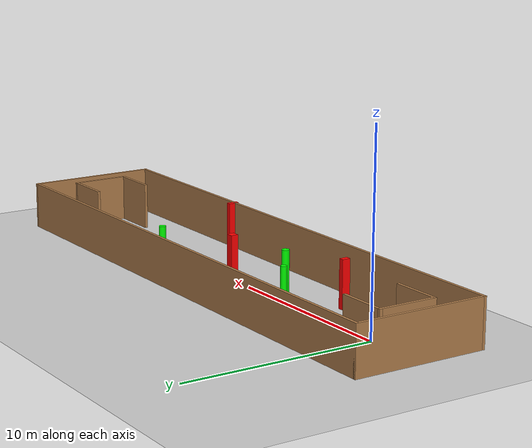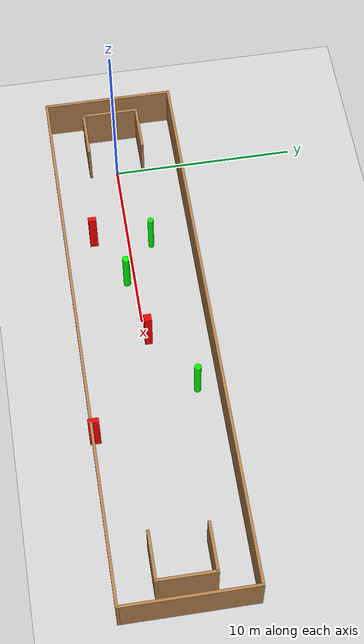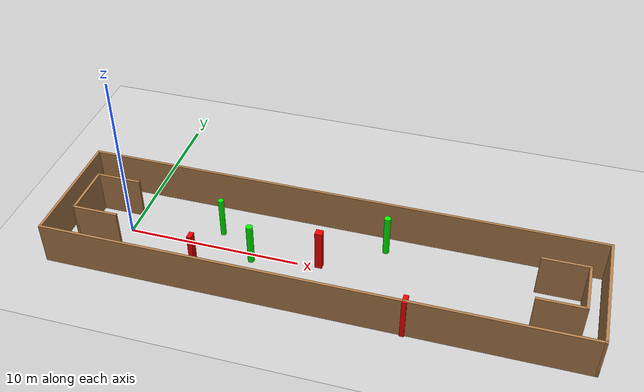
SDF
<sdf version="1.7">
 <world name="default">
  <light name="sun" type="directional">
   <pose>0 0 10 0 -0 0</pose>
   <diffuse>0.8 0.8 0.8 1</diffuse>
   <specular>0.2 0.2 0.2 1</specular>
   <attenuation>
    <range>1000</range>
    <constant>0.9</constant>
    <linear>0.01</linear>
    <quadratic>0.001</quadratic>
   </attenuation>
   <direction>-0.5 0.1 -0.9</direction>
   <spot><inner_angle>0</inner_angle><outer_angle>0</outer_angle><falloff>0</falloff></spot>
  </light>
  <model name="ground_plane">
   <static>1</static>
   <link name="link">
    <collision name="collision">
     <geometry><plane><normal>0 0 1</normal><size>100 100</size></plane></geometry>
     <surface>
      <contact><collide_bitmask>65535</collide_bitmask></contact>
      <friction><ode><mu>100</mu><mu2>50</mu2></ode></friction>
     </surface>
    </collision>
    <visual name="visual">
     <cast_shadows>0</cast_shadows>
     <geometry><plane><normal>0 0 1</normal><size>100 100</size></plane></geometry>
     <material>
      <script><uri>file://media/materials/scripts/gazebo.material</uri><name>Gazebo/Grey</name></script>
     </material>
    </visual>
   </link>
  </model>
  <gravity>0 0 -9.8</gravity>
  <magnetic_field>6e-06 2.3e-05 -4.2e-05</magnetic_field>
  <atmosphere type="adiabatic"/>
  <physics type="ode">
   <max_step_size>0.001</max_step_size>
   <real_time_factor>1</real_time_factor>
   <real_time_update_rate>1000</real_time_update_rate>
  </physics>
  <scene><ambient>0.4 0.4 0.4 1</ambient><background>0.7 0.7 0.7 1</background><shadows>1</shadows></scene>
  <spherical_coordinates>
   <surface_model>EARTH_WGS84</surface_model>
   <latitude_deg>0</latitude_deg>
   <longitude_deg>0</longitude_deg>
   <elevation>0</elevation>
   <heading_deg>0</heading_deg>
  </spherical_coordinates>
  <model name="my_base_walls">
   <link name="Wall_0">
    <collision name="Wall_0_Collision">
     <geometry><box><size>7.15 0.15 2.5</size></box></geometry>
     <pose>0 0 1.25 0 -0 0</pose>
    </collision>
    <visual name="Wall_0_Visual">
     <pose>0 0 1.25 0 -0 0</pose>
     <geometry><box><size>7.15 0.15 2.5</size></box></geometry>
     <material>
      <script><uri>file://media/materials/scripts/gazebo.material</uri><name>Gazebo/Wood</name></script>
      <ambient>1 1 1 1</ambient>
     </material>
     <meta><layer>0</layer></meta>
    </visual>
    <pose>-15 0 0 0 -0 1.5708</pose>
   </link>
   <link name="Wall_10">
    <collision name="Wall_10_Collision">
     <geometry><box><size>2.65 0.15 2.5</size></box></geometry>
     <pose>0 0 1.25 0 -0 0</pose>
    </collision>
    <visual name="Wall_10_Visual">
     <pose>0 0 1.25 0 -0 0</pose>
     <geometry><box><size>2.65 0.15 2.5</size></box></geometry>
     <material>
      <script><uri>file://media/materials/scripts/gazebo.material</uri><name>Gazebo/Wood</name></script>
      <ambient>1 1 1 1</ambient>
     </material>
     <meta><layer>0</layer></meta>
    </visual>
    <pose>-12.75 -1.5 0 0 -0 0</pose>
   </link>
   <link name="Wall_12">
    <collision name="Wall_12_Collision">
     <geometry><box><size>2.65 0.15 2.5</size></box></geometry>
     <pose>0 0 1.25 0 -0 0</pose>
    </collision>
    <visual name="Wall_12_Visual">
     <pose>0 0 1.25 0 -0 0</pose>
     <geometry><box><size>2.65 0.15 2.5</size></box></geometry>
     <material>
      <script><uri>file://media/materials/scripts/gazebo.material</uri><name>Gazebo/Wood</name></script>
      <ambient>1 1 1 1</ambient>
     </material>
     <meta><layer>0</layer></meta>
    </visual>
    <pose>-12.75 1.5 0 0 -0 0</pose>
   </link>
   <link name="Wall_14">
    <collision name="Wall_14_Collision">
     <geometry><box><size>3.15 0.15 2.5</size></box></geometry>
     <pose>0 0 1.25 0 -0 0</pose>
    </collision>
    <visual name="Wall_14_Visual">
     <pose>0 0 1.25 0 -0 0</pose>
     <geometry><box><size>3.15 0.15 2.5</size></box></geometry>
     <material>
      <script><uri>file://media/materials/scripts/gazebo.material</uri><name>Gazebo/Wood</name></script>
      <ambient>1 1 1 1</ambient>
     </material>
     <meta><layer>0</layer></meta>
    </visual>
    <pose>14 0 0 0 -0 -1.5708</pose>
   </link>
   <link name="Wall_15">
    <collision name="Wall_15_Collision">
     <geometry><box><size>2.65 0.15 2.5</size></box></geometry>
     <pose>0 0 1.25 0 -0 0</pose>
    </collision>
    <visual name="Wall_15_Visual">
     <pose>0 0 1.25 0 -0 0</pose>
     <geometry><box><size>2.65 0.15 2.5</size></box></geometry>
     <material>
      <script><uri>file://media/materials/scripts/gazebo.material</uri><name>Gazebo/Wood</name></script>
      <ambient>1 1 1 1</ambient>
     </material>
     <meta><layer>0</layer></meta>
    </visual>
    <pose>12.75 -1.5 0 0 -0 3.14159</pose>
   </link>
   <link name="Wall_17">
    <collision name="Wall_17_Collision">
     <geometry><box><size>2.65 0.15 2.5</size></box></geometry>
     <pose>0 0 1.25 0 -0 0</pose>
    </collision>
    <visual name="Wall_17_Visual">
     <pose>0 0 1.25 0 -0 0</pose>
     <geometry><box><size>2.65 0.15 2.5</size></box></geometry>
     <material>
      <script><uri>file://media/materials/scripts/gazebo.material</uri><name>Gazebo/Wood</name></script>
      <ambient>1 1 1 1</ambient>
     </material>
     <meta><layer>0</layer></meta>
    </visual>
    <pose>12.75 1.5 0 0 -0 3.14159</pose>
   </link>
   <link name="Wall_2">
    <collision name="Wall_2_Collision">
     <geometry><box><size>30.15 0.15 2.5</size></box></geometry>
     <pose>0 0 1.25 0 -0 0</pose>
    </collision>
    <visual name="Wall_2_Visual">
     <pose>0 0 1.25 0 -0 0</pose>
     <geometry><box><size>30.15 0.15 2.5</size></box></geometry>
     <material>
      <script><uri>file://media/materials/scripts/gazebo.material</uri><name>Gazebo/Wood</name></script>
      <ambient>1 1 1 1</ambient>
     </material>
     <meta><layer>0</layer></meta>
    </visual>
    <pose>-0 -3.5 0 0 -0 0</pose>
   </link>
   <link name="Wall_4">
    <collision name="Wall_4_Collision">
     <geometry><box><size>30.15 0.15 2.5</size></box></geometry>
     <pose>0 0 1.25 0 -0 0</pose>
    </collision>
    <visual name="Wall_4_Visual">
     <pose>0 0 1.25 0 -0 0</pose>
     <geometry><box><size>30.15 0.15 2.5</size></box></geometry>
     <material>
      <script><uri>file://media/materials/scripts/gazebo.material</uri><name>Gazebo/Wood</name></script>
      <ambient>1 1 1 1</ambient>
     </material>
     <meta><layer>0</layer></meta>
    </visual>
    <pose>-0 3.5 0 0 -0 0</pose>
   </link>
   <link name="Wall_6">
    <collision name="Wall_6_Collision">
     <geometry><box><size>7.15 0.15 2.5</size></box></geometry>
     <pose>0 0 1.25 0 -0 0</pose>
    </collision>
    <visual name="Wall_6_Visual">
     <pose>0 0 1.25 0 -0 0</pose>
     <geometry><box><size>7.15 0.15 2.5</size></box></geometry>
     <material>
      <script><uri>file://media/materials/scripts/gazebo.material</uri><name>Gazebo/Wood</name></script>
      <ambient>1 1 1 1</ambient>
     </material>
     <meta><layer>0</layer></meta>
    </visual>
    <pose>15 0 0 0 -0 -1.5708</pose>
   </link>
   <link name="Wall_9">
    <collision name="Wall_9_Collision">
     <geometry><box><size>3.15 0.15 2.5</size></box></geometry>
     <pose>0 0 1.25 0 -0 0</pose>
    </collision>
    <visual name="Wall_9_Visual">
     <pose>0 0 1.25 0 -0 0</pose>
     <geometry><box><size>3.15 0.15 2.5</size></box></geometry>
     <material>
      <script><uri>file://media/materials/scripts/gazebo.material</uri><name>Gazebo/Wood</name></script>
      <ambient>1 1 1 1</ambient>
     </material>
     <meta><layer>0</layer></meta>
    </visual>
    <pose>-14 0 0 0 -0 -1.5708</pose>
   </link>
   <static>1</static>
   <pose>11.5 0 0 0 -0 0</pose>
  </model>
  <model name="cylinder1">
   <static>1</static>
   <link name="link">
    <inertial>
     <mass>1</mass>
     <inertia><ixx>0.5</ixx><ixy>0</ixy><ixz>0</ixz><iyy>0.5</iyy><iyz>0</iyz><izz>1</izz></inertia>
    </inertial>
    <collision name="collision">
     <geometry><cylinder><radius>0.1955430757274091</radius><length>2.5</length></cylinder></geometry>
    </collision>
    <visual name="visual">
     <geometry><cylinder><radius>0.1955430757274091</radius><length>2.5</length></cylinder></geometry>
     <material>
      <ambient>0 1 0 1</ambient>
      <diffuse>0 1 0 1</diffuse>
      <specular>0.1 0.1 0.1 1</specular>
      <emissive>0 0 0 0</emissive>
     </material>
    </visual>
   </link>
   <pose>7.453279040193957 -0.43951226768660323 1.25 0 0 0</pose>
  </model>
  <model name="cylinder2">
   <static>1</static>
   <link name="link">
    <inertial>
     <mass>1</mass>
     <inertia><ixx>0.5</ixx><ixy>0</ixy><ixz>0</ixz><iyy>0.5</iyy><iyz>0</iyz><izz>1</izz></inertia>
    </inertial>
    <collision name="collision">
     <geometry><cylinder><radius>0.18513770098683238</radius><length>2.5</length></cylinder></geometry>
    </collision>
    <visual name="visual">
     <geometry><cylinder><radius>0.18513770098683238</radius><length>2.5</length></cylinder></geometry>
     <material>
      <ambient>0 1 0 1</ambient>
      <diffuse>0 1 0 1</diffuse>
      <specular>0.1 0.1 0.1 1</specular>
      <emissive>0 0 0 0</emissive>
     </material>
    </visual>
   </link>
   <pose>14.53564680223698 2.316910366325043 1.25 0 0 0</pose>
  </model>
  <model name="cylinder3">
   <static>1</static>
   <link name="link">
    <inertial>
     <mass>1</mass>
     <inertia><ixx>0.5</ixx><ixy>0</ixy><ixz>0</ixz><iyy>0.5</iyy><iyz>0</iyz><izz>1</izz></inertia>
    </inertial>
    <collision name="collision">
     <geometry><cylinder><radius>0.16085053837727067</radius><length>2.5</length></cylinder></geometry>
    </collision>
    <visual name="visual">
     <geometry><cylinder><radius>0.16085053837727067</radius><length>2.5</length></cylinder></geometry>
     <material>
      <ambient>0 1 0 1</ambient>
      <diffuse>0 1 0 1</diffuse>
      <specular>0.1 0.1 0.1 1</specular>
      <emissive>0 0 0 0</emissive>
     </material>
    </visual>
   </link>
   <pose>5.175172966884718 1.2269686791547993 1.25 0 0 0</pose>
  </model>
  <model name="box1">
   <static>1</static>
   <link name="link">
    <inertial>
     <mass>1</mass>
     <inertia><ixx>0.083</ixx><ixy>0</ixy><ixz>0</ixz><iyy>0.083</iyy><iyz>0</iyz><izz>0.083</izz></inertia>
    </inertial>
    <collision name="collision">
     <geometry><box><size>0.41415367753467014 0.3984759793868684 2.5</size></box></geometry>
    </collision>
    <visual name="visual">
     <geometry><box><size>0.41415367753467014 0.3984759793868684 2.5</size></box></geometry>
     <material>
      <ambient>1 0 0 1</ambient>
      <diffuse>1 0 0 1</diffuse>
      <specular>0.1 0.1 0.1 1</specular>
      <emissive>0 0 0 0</emissive>
     </material>
    </visual>
    <sensor name="my_contact" type="contact">
     <contact><collision>box_collision</collision><topic>__default_topic__</topic></contact>
    </sensor>
   </link>
   <pose>11.22888643649083 0.18867080792148894 1.25 0 0 0</pose>
  </model>
  <model name="box2">
   <static>1</static>
   <link name="link">
    <inertial>
     <mass>1</mass>
     <inertia><ixx>0.083</ixx><ixy>0</ixy><ixz>0</ixz><iyy>0.083</iyy><iyz>0</iyz><izz>0.083</izz></inertia>
    </inertial>
    <collision name="collision">
     <geometry><box><size>0.26625046502633776 0.576955006967985 2.5</size></box></geometry>
    </collision>
    <visual name="visual">
     <geometry><box><size>0.26625046502633776 0.576955006967985 2.5</size></box></geometry>
     <material>
      <ambient>1 0 0 1</ambient>
      <diffuse>1 0 0 1</diffuse>
      <specular>0.1 0.1 0.1 1</specular>
      <emissive>0 0 0 0</emissive>
     </material>
    </visual>
    <sensor name="my_contact" type="contact">
     <contact><collision>box_collision</collision><topic>__default_topic__</topic></contact>
    </sensor>
   </link>
   <pose>16.728176940315738 -3.373672065036666 1.25 0 0 0</pose>
  </model>
  <model name="box3">
   <static>1</static>
   <link name="link">
    <inertial>
     <mass>1</mass>
     <inertia><ixx>0.083</ixx><ixy>0</ixy><ixz>0</ixz><iyy>0.083</iyy><iyz>0</iyz><izz>0.083</izz></inertia>
    </inertial>
    <collision name="collision">
     <geometry><box><size>0.2644195383325432 0.4397379310766595 2.5</size></box></geometry>
    </collision>
    <visual name="visual">
     <geometry><box><size>0.2644195383325432 0.4397379310766595 2.5</size></box></geometry>
     <material>
      <ambient>1 0 0 1</ambient>
      <diffuse>1 0 0 1</diffuse>
      <specular>0.1 0.1 0.1 1</specular>
      <emissive>0 0 0 0</emissive>
     </material>
    </visual>
    <sensor name="my_contact" type="contact">
     <contact><collision>box_collision</collision><topic>__default_topic__</topic></contact>
    </sensor>
   </link>
   <pose>4.622624990105596 -1.9160767593192134 1.25 0 0 0</pose>
  </model>
 </world>
</sdf>
